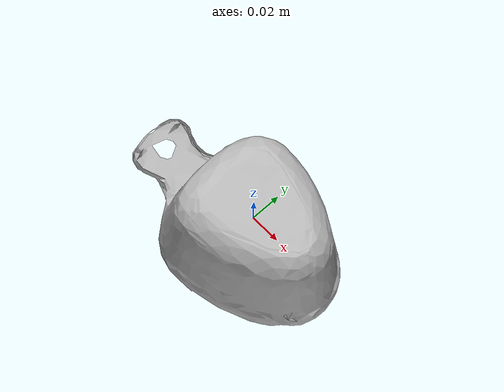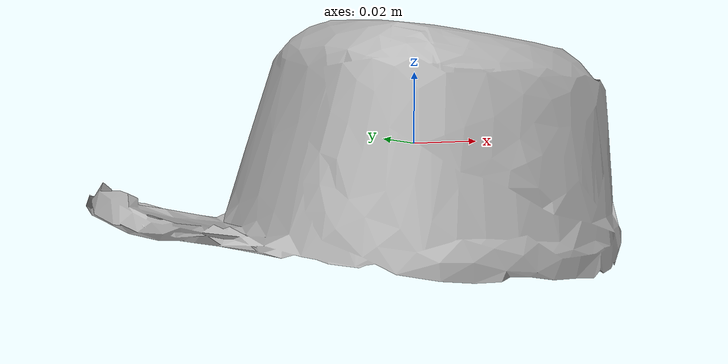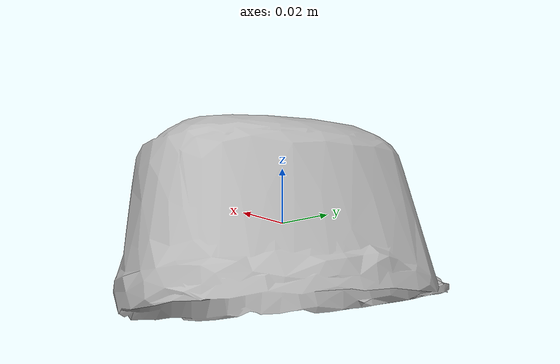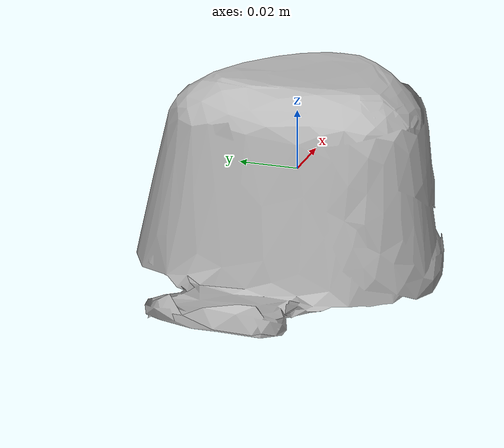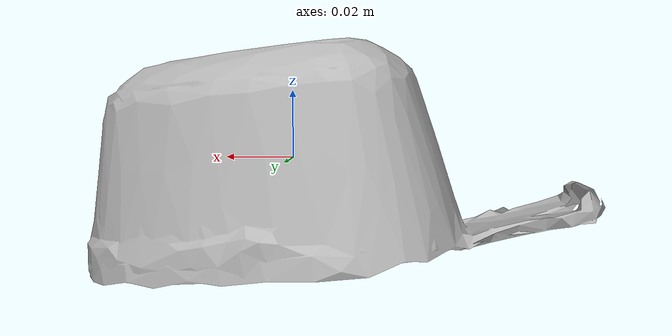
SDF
<?xml version='1.0'?>
<sdf version='1.6'>
    <model name='b_wildo_bowl'>
        <static>false</static>
        <pose>0 0 0 0 0 0</pose>

        <link name='link'>
            <inertial>
                <mass>0.40</mass>
                <pose>0.000382297035518770	-0.000149204207528814	0.00495379249275721 0 0 0</pose>
                <inertia>
                    <ixx>7.972462473661376e-05</ixx>
                    <ixy>0.0</ixy>
                    <ixz>0.0</ixz>
                    <iyy>9.743942735555959e-05</iyy>
                    <iyz>0.0</iyz>
                    <izz>3.897022921041362e-05</izz>
                </inertia>
            </inertial>

            <collision name='collision'>
                <geometry>
                    <mesh>
                        <uri>model://b_wildo_bowl/b_wildo_bowl.dae</uri>
                    </mesh>
                </geometry>
                <surface>
                    <friction>
                        <ode>
                            <mu>0.2</mu>
                            <mu2>0.2</mu2>
                        </ode>
                    </friction>
                </surface>
            </collision>
            <visual name='visual'>
                <geometry>
                    <mesh>
                        <uri>model://b_wildo_bowl/b_wildo_bowl.dae</uri>
                    </mesh>
                </geometry>
            </visual>
        </link>
    </model>
</sdf>
